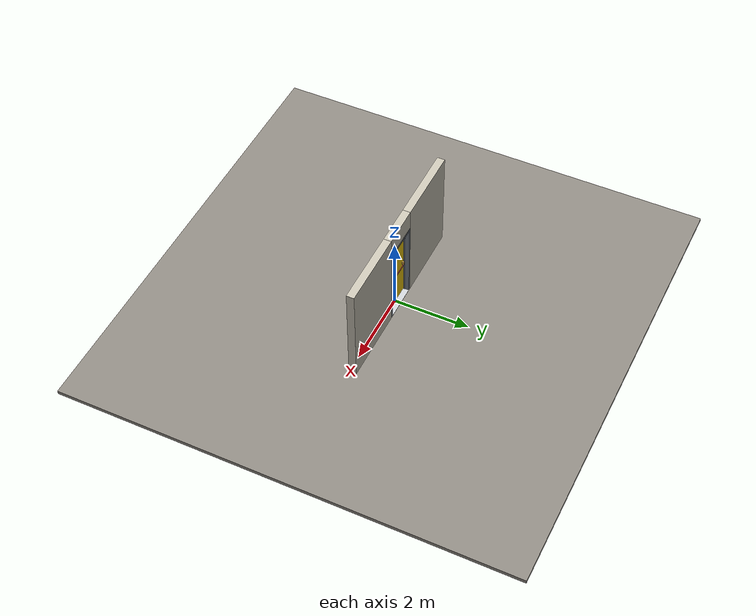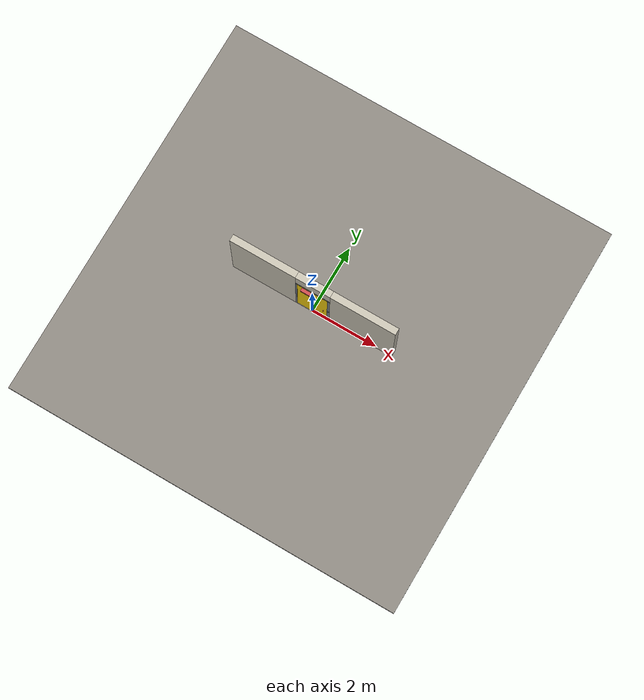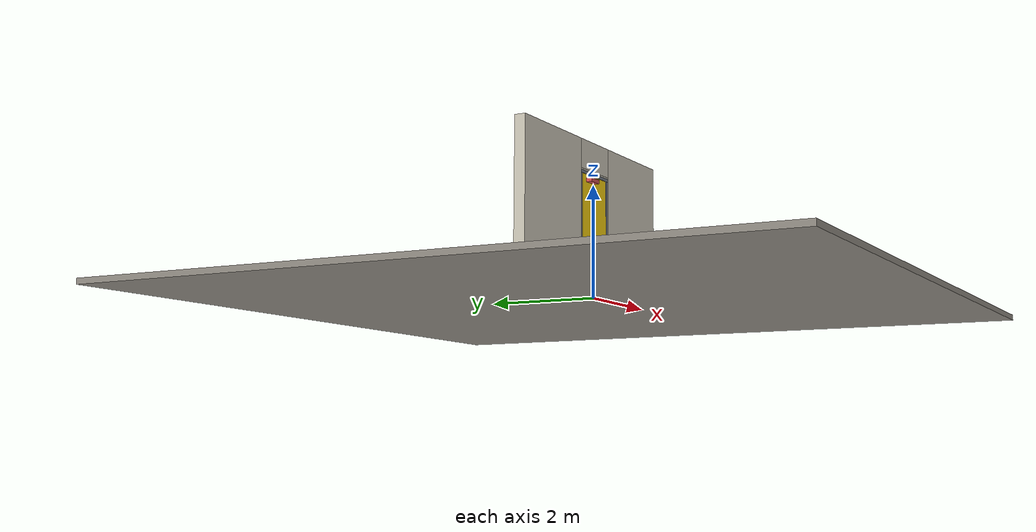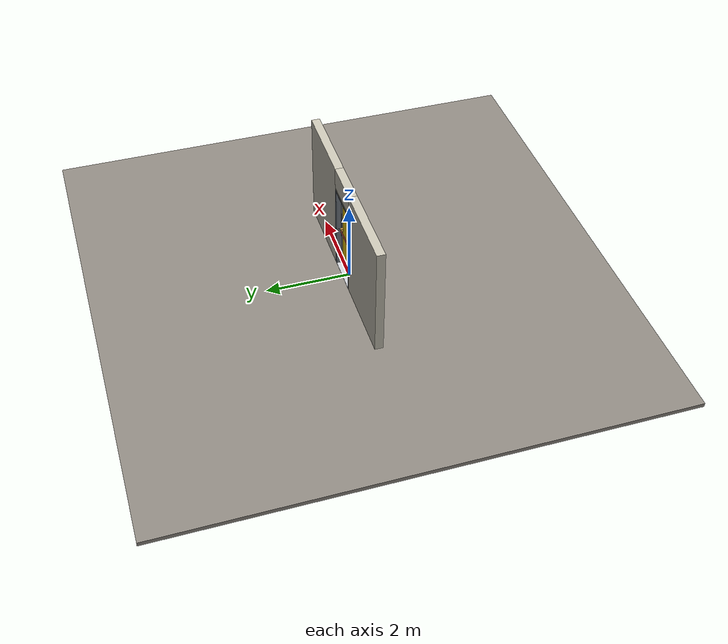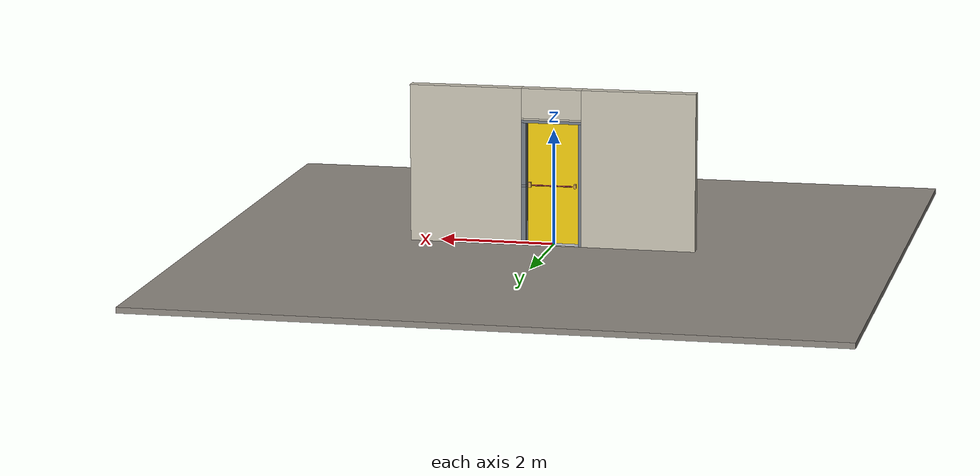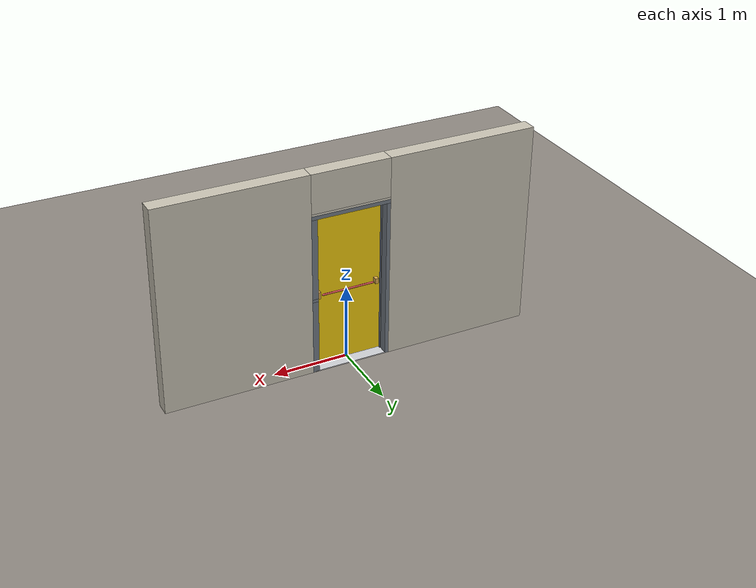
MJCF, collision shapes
<?xml version="1.0" ?>
<mujoco model="db0837_swing_single_simple">
  <compiler angle="radian" meshdir="../../hardware" texturedir="../../textures" autolimits="true" inertiafromgeom="false"/>
  <option timestep="0.002" integrator="implicitfast" cone="elliptic" impratio="10" noslip_iterations="3">
    <flag multiccd="enable"/>
  </option>
  <size memory="16M"/>
  <default>
    <geom condim="4" solref="0.005 1" solimp="0.95 0.99 0.001"/>
    <joint solreflimit="0.005 1" solimplimit="0.95 0.99 0.001"/>
    <tendon solreflimit="0.005 1"/>
    <equality solref="0.002 1"/>
  </default>
  <visual>
    <headlight ambient="0.4 0.4 0.4" diffuse="0.7 0.7 0.7" specular="0.2 0.2 0.2"/>
    <quality shadowsize="4096"/>
    <map znear="0.01" zfar="60"/>
  </visual>
  <asset>
    <mesh name="closer_body_fdc4667657" file="closer_body_fdc4667657.obj"/>
    <mesh name="crossbar_a94ab98191" file="crossbar_a94ab98191.obj"/>
    <mesh name="hinge_e22b26c0c1" file="hinge_e22b26c0c1.obj"/>
    <mesh name="hinge_jamb_e1d088f8dc" file="hinge_jamb_e1d088f8dc.obj"/>
    <mesh name="pull_1e5d69a91a" file="pull_1e5d69a91a.obj"/>
    <material name="mat_floor" rgba="0.55 0.53 0.5 1" specular="0.2" shininess="0.15" reflectance="0"/>
    <material name="mat_wall" rgba="0.78 0.76 0.7 1" specular="0.2" shininess="0.1" reflectance="0"/>
    <material name="mat_leaf" rgba="0.95 0.8 0.05 1" specular="0.23" shininess="0.6" reflectance="0.02"/>
    <material name="mat_hinge" rgba="0.65 0.66 0.68 1" specular="0.74" shininess="0.5" reflectance="0.36"/>
    <material name="mat_op_brass" rgba="0.85 0.66 0.3 1" specular="0.8" shininess="0.75" reflectance="0.4"/>
    <material name="mat_op_stainless" rgba="0.75 0.76 0.77 1" specular="0.8" shininess="0.65" reflectance="0.4"/>
    <material name="mat_bolt" rgba="0.75 0.76 0.77 1" specular="0.8" shininess="0.65" reflectance="0.4"/>
    <material name="mat_frame" rgba="0.45 0.48 0.52 1" specular="0.32" shininess="0.6" reflectance="0.08"/>
    <material name="mat_seal" rgba="0.1 0.1 0.1 1" specular="0.2" shininess="0.1" reflectance="0"/>
    <material name="mat_threshold" rgba="0.8 0.81 0.83 1" specular="0.8" shininess="0.6" reflectance="0.4"/>
    <material name="mat_closer" rgba="0.22 0.17 0.13 1" specular="0.8" shininess="0.6" reflectance="0.4"/>
    <material name="mat_exit_sign" rgba="0.85 0.1 0.1 1" specular="0.2" shininess="0.6" reflectance="0"/>
    <material name="mat_sign_bracket" rgba="0.8 0.81 0.83 1" specular="0.8" shininess="0.6" reflectance="0.4"/>
    <texture name="skybox" type="skybox" builtin="gradient" rgb1="0.6 0.7 0.85" rgb2="0.9 0.92 0.95" width="256" height="256"/>
  </asset>
  <worldbody>
    <light name="sun" pos="1.5 -2.5 4" dir="-0.3 0.5 -0.8" directional="true" diffuse="0.8 0.8 0.8" specular="0.3 0.3 0.3" castshadow="true"/>
    <light name="fill" pos="-1.5 2.5 3" dir="0.3 -0.5 -0.7" directional="true" diffuse="0.35 0.35 0.4" castshadow="false"/>
    <camera name="robot_view" pos="0 -2.566812 1.812087" xyaxes="1 0 0 0 0.26963 0.962964" fovy="52"/>
    <camera name="far_view" pos="0 2.708813 1.812087" xyaxes="-1 0 0 0 -0.26963 0.962964" fovy="52"/>
    <camera name="iso" pos="2.004737 -2.144762 2.234138" xyaxes="0.741536 0.670913 0 -0.242917 0.268487 0.932151" fovy="46"/>
    <camera name="detail_handle" pos="0.5465 -0.882 1.32" xyaxes="0.97561 0.219512 0 -0.070934 0.315262 0.94635" fovy="38"/>
    <geom name="floor" type="box" size="6 6 0.05" pos="0 0 -0.05" material="mat_floor" group="0" contype="1" conaffinity="1" friction="0.8 0.005 0.0001" density="2400"/>
    <geom name="wall_left" type="box" size="0.99475 0.1 1.3735" pos="-1.50525 0.071 1.3735" material="mat_wall" group="0" contype="1" conaffinity="1" friction="0.6 0.005 0.0001" density="800"/>
    <geom name="wall_right" type="box" size="0.97975 0.1 1.3735" pos="1.52025 0.071 1.3735" material="mat_wall" group="0" contype="1" conaffinity="1" friction="0.6 0.005 0.0001" density="800"/>
    <geom name="wall_header" type="box" size="0.5255 0.1 0.26" pos="0.015 0.071 2.487" material="mat_wall" group="0" contype="1" conaffinity="1" friction="0.6 0.005 0.0001" density="800"/>
    <geom name="hinge_0_jamb" type="mesh" mesh="hinge_jamb_e1d088f8dc" pos="-0.4575 -0.029 0.267" material="mat_hinge" group="1" contype="0" conaffinity="0" density="7850"/>
    <geom name="hinge_1_jamb" type="mesh" mesh="hinge_jamb_e1d088f8dc" pos="-0.4575 -0.029 0.832333" material="mat_hinge" group="1" contype="0" conaffinity="0" density="7850"/>
    <geom name="hinge_2_jamb" type="mesh" mesh="hinge_jamb_e1d088f8dc" pos="-0.4575 -0.029 1.397667" material="mat_hinge" group="1" contype="0" conaffinity="0" density="7850"/>
    <geom name="hinge_3_jamb" type="mesh" mesh="hinge_jamb_e1d088f8dc" pos="-0.4575 -0.029 1.963" material="mat_hinge" group="1" contype="0" conaffinity="0" density="7850"/>
    <geom name="jamb_hinge" type="box" size="0.025 0.1 1.0735" pos="-0.4855 0.071 1.0735" material="mat_frame" group="0" contype="1" conaffinity="1" friction="0.6 0.005 0.0001" density="300"/>
    <geom name="strike_1040_wall_n" type="box" size="0.04 0.08 0.02" pos="0.5005 0.091 1.04" material="mat_frame" group="0" contype="1" conaffinity="1" friction="0.6 0.005 0.0001" density="300"/>
    <geom name="strike_1040_wall_p" type="box" size="0.04 0.008 0.02" pos="0.5005 -0.019 1.04" material="mat_frame" group="0" contype="1" conaffinity="1" friction="0.6 0.005 0.0001" density="300"/>
    <geom name="strike_1040_ramp" type="box" size="0.04 0.018028 0.02" pos="0.503782 -0.019812 1.04" quat="0.957092 0 0 0.289784" material="mat_frame" group="0" contype="1" conaffinity="1" friction="0.12 0.005 0.0001" density="300"/>
    <geom name="strike_1040_back" type="box" size="0.0285 0.011 0.02" pos="0.512 0 1.04" material="mat_frame" group="0" contype="1" conaffinity="1" friction="0.6 0.005 0.0001" density="300"/>
    <geom name="jamb_strike_0" type="box" size="0.04 0.1 0.51" pos="0.5005 0.071 0.51" material="mat_frame" group="0" contype="1" conaffinity="1" friction="0.6 0.005 0.0001" density="300"/>
    <geom name="jamb_strike_1" type="box" size="0.04 0.1 0.5435" pos="0.5005 0.071 1.6035" material="mat_frame" group="0" contype="1" conaffinity="1" friction="0.6 0.005 0.0001" density="300"/>
    <geom name="jamb_head" type="box" size="0.5255 0.1 0.025" pos="0.015 0.071 2.172" material="mat_frame" group="0" contype="1" conaffinity="1" friction="0.6 0.005 0.0001" density="300"/>
    <geom name="head_stud" type="box" size="0.5255 0.1 0.015" pos="0.015 0.071 2.212" material="mat_wall" group="0" contype="1" conaffinity="1" friction="0.6 0.005 0.0001" density="500"/>
    <geom name="stop_hinge" type="box" size="0.0055 0.016 1.0735" pos="-0.455 0.0385 1.0735" material="mat_frame" group="0" contype="1" conaffinity="1" friction="0.6 0.005 0.0001" density="300"/>
    <geom name="stop_strike" type="box" size="0.0055 0.016 1.0735" pos="0.455 0.0385 1.0735" material="mat_frame" group="0" contype="1" conaffinity="1" friction="0.6 0.005 0.0001" density="300"/>
    <geom name="stop_head" type="box" size="0.4605 0.016 0.0055" pos="0 0.0385 2.1415" material="mat_frame" group="0" contype="1" conaffinity="1" friction="0.6 0.005 0.0001" density="300"/>
    <geom name="seal_hinge" type="box" size="0.004 0.0025 1.0735" pos="-0.4575 0.0245 1.0735" material="mat_seal" group="1" contype="0" conaffinity="0" density="1100"/>
    <geom name="seal_strike" type="box" size="0.004 0.0025 1.0735" pos="0.4575 0.0245 1.0735" material="mat_seal" group="1" contype="0" conaffinity="0" density="1100"/>
    <geom name="seal_head" type="box" size="0.4405 0.0025 0.008" pos="0 0.0245 2.135" material="mat_seal" group="1" contype="0" conaffinity="0" density="1100"/>
    <geom name="threshold" type="box" size="0.5105 0.1 0.0065" pos="0 0.071 0.0065" material="mat_threshold" group="0" contype="1" conaffinity="1" friction="0.5 0.005 0.0001" density="2700"/>
    <site name="approach_point" pos="0 -1.5 0" quat="1 0 0 0" size="0.05" rgba="0.2 0.9 0.2 0.5" group="4"/>
    <site name="goal_point" pos="0 1.5 0" quat="1 0 0 0" size="0.05" rgba="0.2 0.9 0.2 0.5" group="4"/>
    <site name="door_plane_center" pos="0 0 1.0735" quat="1 0 0 0" size="0.02" rgba="0.2 0.9 0.2 0.5" group="4"/>
    <body name="leaf" pos="-0.4605 0 0">
      <inertial pos="0.421658 -0.01578 1.295676" mass="56.436269" quat="-0.493792 0.470415 0.515367 0.518918" diaginertia="3.574791691 25.292072701 28.757657592"/>
      <joint name="leaf_hinge" type="hinge" axis="0 0 -1" pos="0.003 -0.029 0" limited="true" range="0 1.745329" solreflimit="0.02 1" damping="12.268966" frictionloss="3.266595" stiffness="12.254931" springref="-1.689116" armature="0.02"/>
      <geom name="leaf_slab" type="box" size="0.457 0.022 1.063" pos="0.46 0 1.08" material="mat_leaf" group="0" contype="1" conaffinity="1" friction="0.42 0.005 0.0001" density="1"/>
      <geom name="hinge_0" type="mesh" mesh="hinge_e22b26c0c1" pos="0.003 -0.029 0.267" material="mat_hinge" group="1" contype="0" conaffinity="0" density="7850"/>
      <geom name="hinge_1" type="mesh" mesh="hinge_e22b26c0c1" pos="0.003 -0.029 0.832333" material="mat_hinge" group="1" contype="0" conaffinity="0" density="7850"/>
      <geom name="hinge_2" type="mesh" mesh="hinge_e22b26c0c1" pos="0.003 -0.029 1.397667" material="mat_hinge" group="1" contype="0" conaffinity="0" density="7850"/>
      <geom name="hinge_3" type="mesh" mesh="hinge_e22b26c0c1" pos="0.003 -0.029 1.963" material="mat_hinge" group="1" contype="0" conaffinity="0" density="7850"/>
      <geom name="leaf_exit_device_case" type="box" size="0.022 0.033 0.045" pos="0.872 0.055 1.04" material="mat_op_brass" group="0" contype="1" conaffinity="1" friction="0.6 0.005 0.0001" density="3000"/>
      <geom name="leaf_exit_device_end_case" type="box" size="0.022 0.03 0.035" pos="0.0765 0.052 1.04" material="mat_op_brass" group="0" contype="1" conaffinity="1" friction="0.6 0.005 0.0001" density="3000"/>
      <geom name="leaf_far_pull_n" type="mesh" mesh="pull_1e5d69a91a" pos="0.827 -0.022 1.04" quat="0.707107 0.707107 0 0" material="mat_op_stainless" group="1" contype="0" conaffinity="0" density="3000"/>
      <geom name="leaf_far_pull_col_n" type="capsule" size="0.0095 0.08" pos="0.827 -0.082 1.04" material="mat_op_stainless" group="3" contype="1" conaffinity="1" rgba="0.8 0.3 0.3 0.25" friction="0.7 0.01 0.0001" density="3000"/>
      <geom name="closer_body" type="mesh" mesh="closer_body_fdc4667657" pos="0.3 -0.022 2.046" quat="0.707107 0.707107 0 0" material="mat_closer" group="1" contype="0" conaffinity="0" density="2000"/>
      <geom name="closer_body_col" type="box" size="0.145 0.05 0.035" pos="0.3 -0.072 2.046" material="mat_closer" group="3" contype="1" conaffinity="1" rgba="0.8 0.3 0.3 0.25" friction="0.6 0.005 0.0001" density="2000"/>
      <site name="leaf_far_pull_grip_n" pos="0.827 -0.082 1.04" quat="1 0 0 0" size="0.012" rgba="0.2 0.9 0.2 0.5" group="4"/>
      <site name="leaf_edge_mid" pos="0.917 0 1.063" quat="1 0 0 0" size="0.02" rgba="0.2 0.9 0.2 0.5" group="4"/>
      <body name="leaf_exit_device" pos="0.47425 0.022 1.04">
        <inertial pos="0 0.05794 0" mass="2.212541" quat="1 0 0 0" diaginertia="0.000361182 0.103984907 0.10418157"/>
        <joint name="leaf_exit_device_hinge" type="hinge" axis="1 0 0" limited="true" range="0 0.35" damping="0.924048" frictionloss="0.14" stiffness="12" springref="-0.333333" armature="0.01"/>
        <geom name="leaf_exit_device_mesh" type="mesh" mesh="crossbar_a94ab98191" pos="0 0 0" quat="-0.707107 0.707107 0 0" material="mat_op_brass" group="1" contype="0" conaffinity="0" density="3000"/>
        <geom name="leaf_exit_device_col" type="capsule" size="0.0125 0.34275" pos="0 0.06 0" quat="0.707107 0 0.707107 0" material="mat_op_brass" group="3" contype="1" conaffinity="1" rgba="0.8 0.3 0.3 0.25" friction="0.7 0.01 0.0001" density="3000"/>
        <site name="leaf_exit_device_push" pos="0 0.06 0" quat="1 0 0 0" size="0.015" rgba="0.2 0.9 0.2 0.5" group="4"/>
      </body>
      <body name="leaf_latch_bolt" pos="0.917 0 1.04">
        <inertial pos="-0.0055 0 0" mass="0.102826" quat="0.92388 -0.382683 0 0" diaginertia="0.000004365 0.000018287 0.000018287"/>
        <joint name="leaf_latch_bolt_slide" type="slide" axis="-1 0 0" limited="true" range="0 0.019" damping="2" frictionloss="0.3" stiffness="800" springref="-0.01" armature="0.1"/>
        <geom name="leaf_latch_bolt_capsule" type="capsule" size="0.0095 0.015" pos="-0.0055 0 0" quat="0.707107 0 0.707107 0" material="mat_bolt" group="0" contype="1" conaffinity="1" friction="0.2 0.005 0.0001" density="8500"/>
      </body>
    </body>
  </worldbody>
  <tendon>
    <fixed name="leaf_latch_bolt_coupling" limited="true" range="0 10">
      <joint joint="leaf_latch_bolt_slide" coef="1"/>
      <joint joint="leaf_exit_device_hinge" coef="-0.059375"/>
    </fixed>
  </tendon>
  <sensor>
    <jointpos name="leaf_hinge_pos" joint="leaf_hinge"/>
    <jointvel name="leaf_hinge_vel" joint="leaf_hinge"/>
    <jointpos name="leaf_exit_device_hinge_pos" joint="leaf_exit_device_hinge"/>
    <jointvel name="leaf_exit_device_hinge_vel" joint="leaf_exit_device_hinge"/>
    <jointpos name="leaf_latch_bolt_slide_pos" joint="leaf_latch_bolt_slide"/>
    <jointvel name="leaf_latch_bolt_slide_vel" joint="leaf_latch_bolt_slide"/>
  </sensor>
</mujoco>
